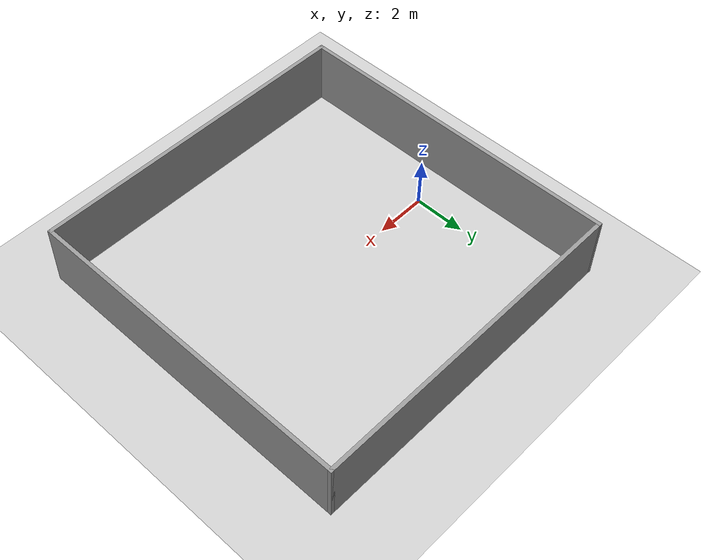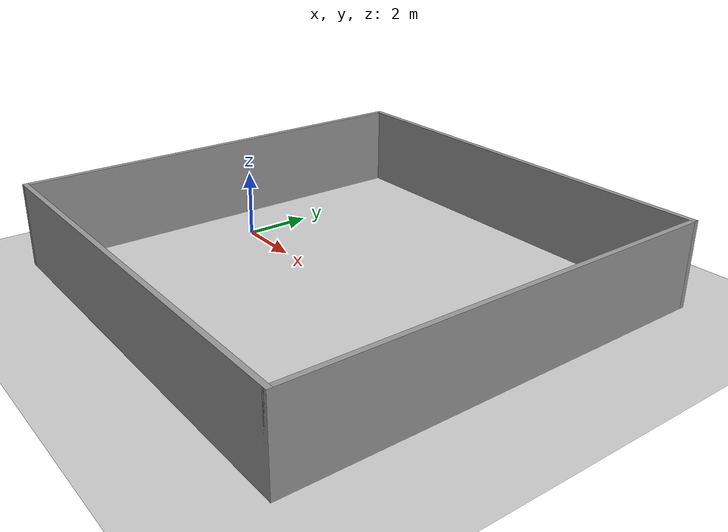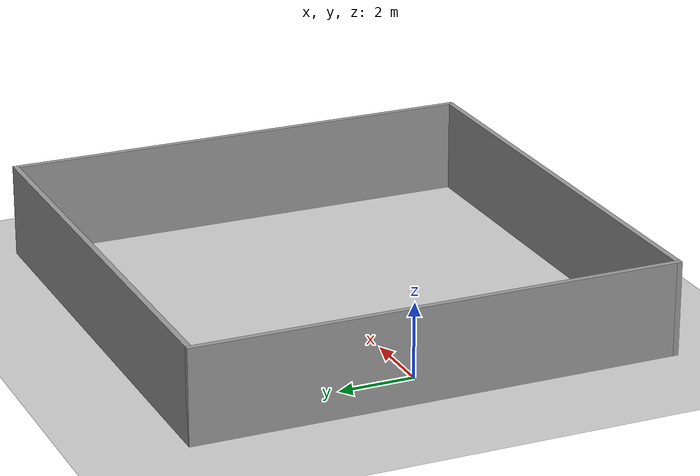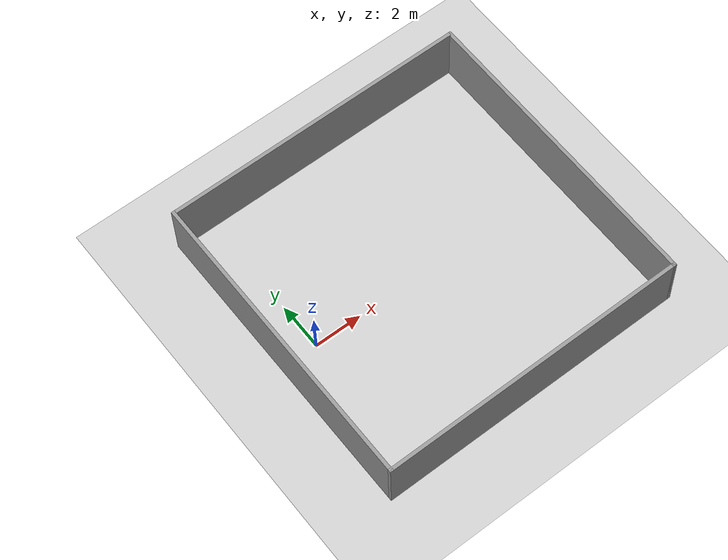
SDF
<sdf version="1.7">
 <world name="default">
  <light name="sun" type="directional">
   <pose>0 0 10 0 -0 0</pose>
   <diffuse>0.8 0.8 0.8 1</diffuse>
   <specular>0.2 0.2 0.2 1</specular>
   <attenuation>
    <range>1000</range>
    <constant>0.9</constant>
    <linear>0.01</linear>
    <quadratic>0.001</quadratic>
   </attenuation>
   <direction>-0.5 0.1 -0.9</direction>
   <spot><inner_angle>0</inner_angle><outer_angle>0</outer_angle><falloff>0</falloff></spot>
  </light>
  <include>
   <uri>model://person_walking</uri>
   <name>person</name>
   <pose>-1 -3 0.1 0 0 -2.355</pose>
   <plugin name="human_controller" filename="libgazebo_ros_planar_move.so">
    <robotNamespace>/person_walking</robotNamespace>
    <commandTopic>cmd_vel</commandTopic>
    <odometryTopic>odom</odometryTopic>
    <odometryFrame>odom</odometryFrame>
    <odometryRate>20.0</odometryRate>
    <robotBaseFrame>link</robotBaseFrame>
   </plugin>
  </include>
  <include><uri>model://walls</uri><name>walls</name><pose>4.9 0 0.1 0 0 0</pose></include>
  <model name="ground_plane">
   <static>1</static>
   <link name="link">
    <collision name="collision">
     <geometry><plane><normal>0 0 1</normal><size>100 100</size></plane></geometry>
     <surface><friction><ode><mu>100</mu><mu2>50</mu2></ode></friction></surface>
    </collision>
    <visual name="visual">
     <cast_shadows>0</cast_shadows>
     <geometry><plane><normal>0 0 1</normal><size>100 100</size></plane></geometry>
     <material>
      <script><uri>file://media/materials/scripts/gazebo.material</uri><name>Gazebo/Grey</name></script>
     </material>
    </visual>
   </link>
  </model>
  <gravity>0 0 -9.8</gravity>
  <magnetic_field>6e-06 2.3e-05 -4.2e-05</magnetic_field>
  <atmosphere type="adiabatic"/>
  <physics type="ode">
   <max_step_size>0.001</max_step_size>
   <real_time_factor>1</real_time_factor>
   <real_time_update_rate>1000</real_time_update_rate>
  </physics>
  <scene><ambient>0.4 0.4 0.4 1</ambient><background>0.7 0.7 0.7 1</background><shadows>1</shadows></scene>
  <spherical_coordinates>
   <surface_model>EARTH_WGS84</surface_model>
   <latitude_deg>0</latitude_deg>
   <longitude_deg>0</longitude_deg>
   <elevation>0</elevation>
   <heading_deg>0</heading_deg>
  </spherical_coordinates>
 </world>
</sdf>

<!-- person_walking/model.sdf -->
<sdf version="1.5">
  <model name="person_walking">
    <link name="link">
      <inertial>
        <pose>0 0 0.95 0 0 0</pose>
        <mass>80.0</mass>
        <inertia>
          <ixx>1000</ixx>
          <ixy>0</ixy>
          <ixz>0</ixz>
          <iyy>1000</iyy>
          <iyz>0</iyz>
          <izz>4.57</izz>
        </inertia>
      </inertial>

    </link>
  </model>
</sdf>

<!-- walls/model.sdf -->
<sdf version='1.7'>
  <model name='walls'>
    <pose>3.105 3.115 0 0 -0 0</pose>
    <link name='Wall_0'>
      <collision name='Wall_0_Collision'>
        <geometry>
          <box>
            <size>13 0.15 2.5</size>
          </box>
        </geometry>
        <pose>0 0 1.25 0 -0 0</pose>
      </collision>
      <visual name='Wall_0_Visual'>
        <pose>0 0 1.25 0 -0 0</pose>
        <geometry>
          <box>
            <size>13 0.15 2.5</size>
          </box>
        </geometry>
        <material>
          <script>
            <uri>file://media/materials/scripts/gazebo.material</uri>
            <name>Gazebo/Grey</name>
          </script>
          <ambient>1 1 1 1</ambient>
        </material>
        <meta>
          <layer>0</layer>
        </meta>
      </visual>
      <pose>-6.425 0 0 0 -0 1.5708</pose>
    </link>
    <link name='Wall_3'>
      <collision name='Wall_3_Collision'>
        <geometry>
          <box>
            <size>13 0.15 2.5</size>
          </box>
        </geometry>
        <pose>0 0 1.25 0 -0 0</pose>
      </collision>
      <visual name='Wall_3_Visual'>
        <pose>0 0 1.25 0 -0 0</pose>
        <geometry>
          <box>
            <size>13 0.15 2.5</size>
          </box>
        </geometry>
        <material>
          <script>
            <uri>file://media/materials/scripts/gazebo.material</uri>
            <name>Gazebo/Grey</name>
          </script>
          <ambient>1 1 1 1</ambient>
        </material>
        <meta>
          <layer>0</layer>
        </meta>
      </visual>
      <pose>0 -6.425 0 0 -0 0</pose>
    </link>
    <link name='Wall_5'>
      <collision name='Wall_5_Collision'>
        <geometry>
          <box>
            <size>13 0.15 2.5</size>
          </box>
        </geometry>
        <pose>0 0 1.25 0 -0 0</pose>
      </collision>
      <visual name='Wall_5_Visual'>
        <pose>0 0 1.25 0 -0 0</pose>
        <geometry>
          <box>
            <size>13 0.15 2.5</size>
          </box>
        </geometry>
        <material>
          <script>
            <uri>file://media/materials/scripts/gazebo.material</uri>
            <name>Gazebo/Grey</name>
          </script>
          <ambient>1 1 1 1</ambient>
        </material>
        <meta>
          <layer>0</layer>
        </meta>
      </visual>
      <pose>6.425 0 0 0 -0 1.5708</pose>
    </link>
    <link name='Wall_7'>
      <collision name='Wall_7_Collision'>
        <geometry>
          <box>
            <size>13 0.15 2.5</size>
          </box>
        </geometry>
        <pose>0 0 1.25 0 -0 0</pose>
      </collision>
      <visual name='Wall_7_Visual'>
        <pose>0 0 1.25 0 -0 0</pose>
        <geometry>
          <box>
            <size>13 0.15 2.5</size>
          </box>
        </geometry>
        <material>
          <script>
            <uri>file://media/materials/scripts/gazebo.material</uri>
            <name>Gazebo/Grey</name>
          </script>
          <ambient>1 1 1 1</ambient>
        </material>
        <meta>
          <layer>0</layer>
        </meta>
      </visual>
      <pose>0 6.425 0 0 -0 0</pose>
    </link>
    <static>1</static>
  </model>
</sdf>
